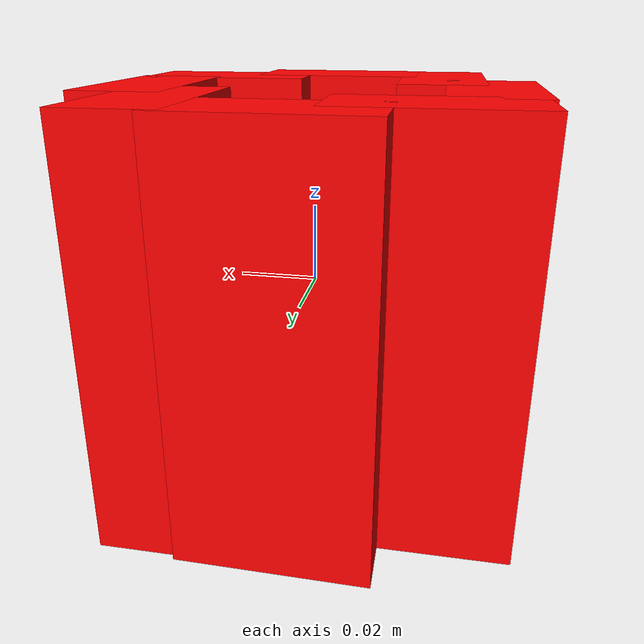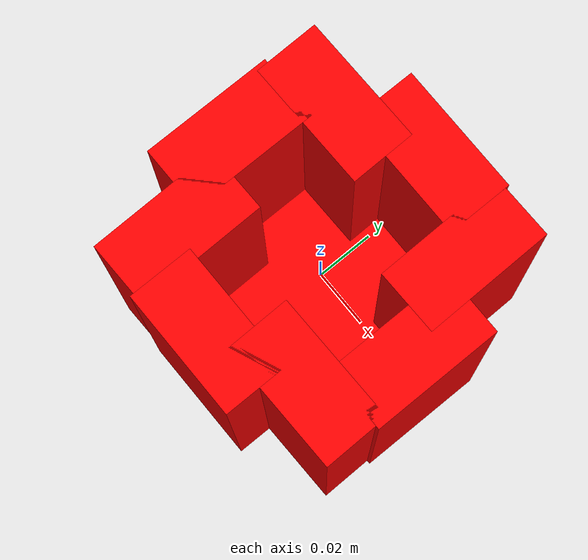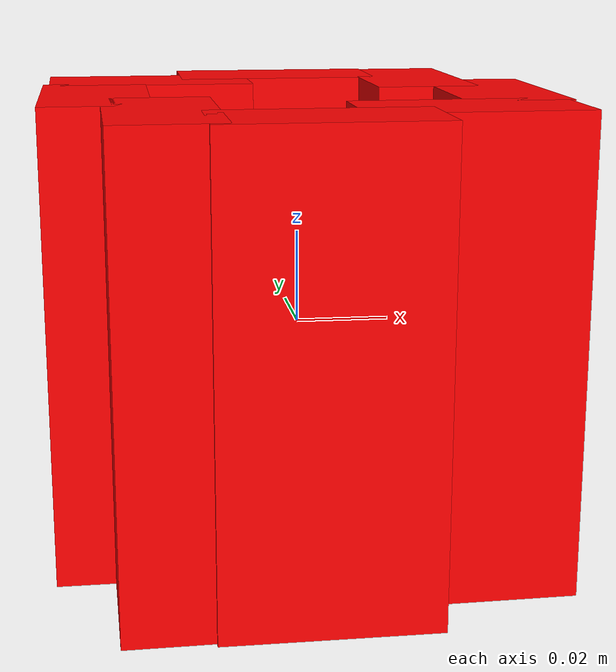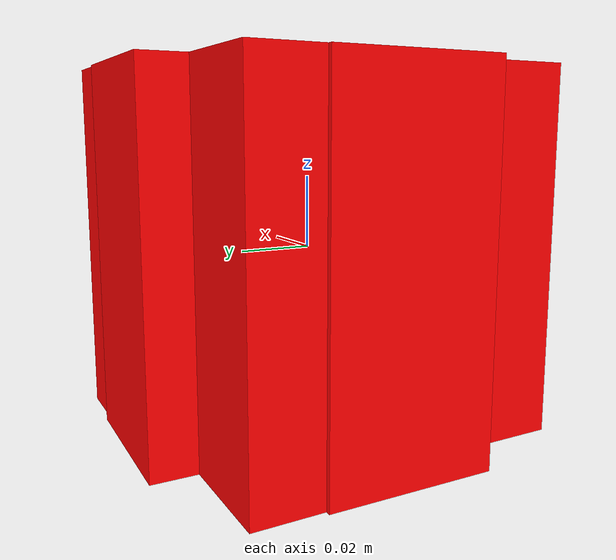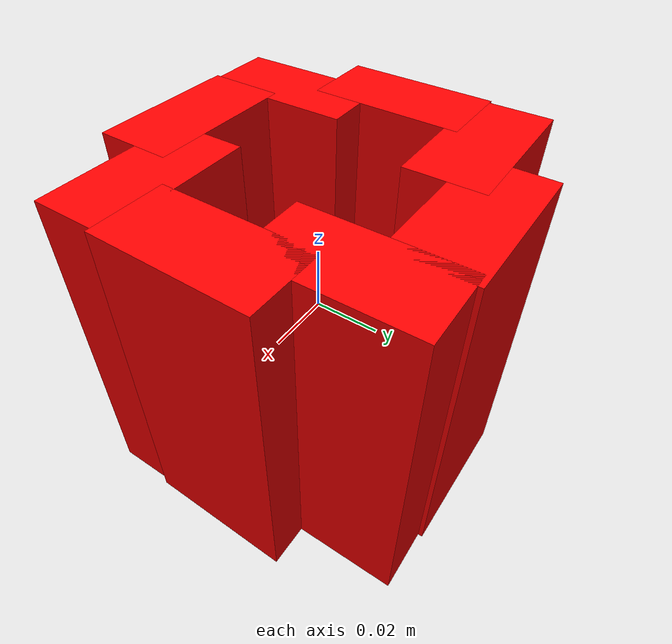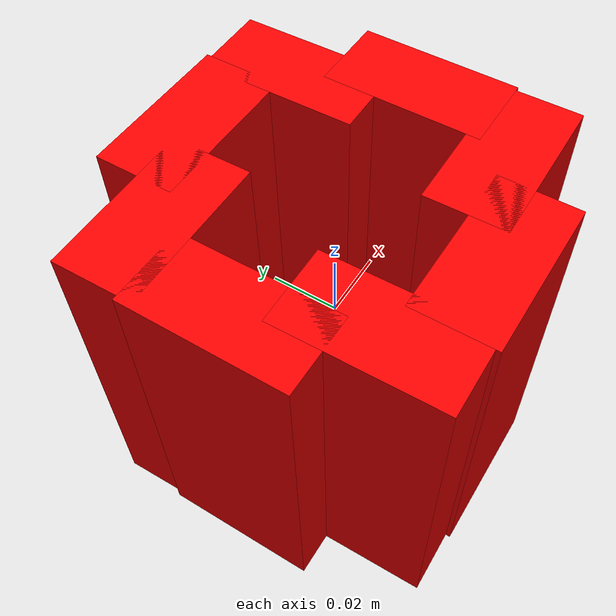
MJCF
<mujoco model="cup">
  <asset>
    <texture file="../textures/metal.png" type="2d" name="tex-metal"/>
    <material name="metal" reflectance="0.7" texrepeat="1 1" texture="tex-metal" texuniform="true"/>
  </asset>
  <worldbody>
    <body>
      <body name="collision">
        <geom pos="-0.04245 0 0.0" size="0.01125 0.0225 0.05" type="box" solimp="0.998 0.998 0.001" solref="0.02 1" density="100" friction="0.95 0.3 0.1" rgba="1 0 0 1" group="1" condim="4"/>
        <geom pos="0.04245 0 0.0" size="0.01125 0.0225 0.05" type="box" solimp="0.998 0.998 0.001" solref="0.02 1" density="100" friction="0.95 0.3 0.1" rgba="1 0 0 1" group="1" condim="4"/>
        <geom pos="0 -0.04245 0.0" size="0.0225 0.01125 0.05" type="box" solimp="0.998 0.998 0.001" solref="0.02 1" density="100" friction="0.95 0.3 0.1" rgba="1 0 0 1" group="1" condim="4"/>
        <geom pos="0 0.04245 0.0" size="0.0225 0.01125 0.05" type="box" solimp="0.998 0.998 0.001" solref="0.02 1" density="100" friction="0.95 0.3 0.1" rgba="1 0 0 1" group="1" condim="4"/>
        <geom pos="-0.03 -0.03 0.0" size="0.01125 0.0225 0.05" axisangle='0 0 1 0.785398' type="box" solimp="0.998 0.998 0.001" solref="0.02 1" density="100" friction="0.95 0.3 0.1" rgba="1 0 0 1" group="1" condim="4"/>
        <geom pos="0.03 0.03 0.0" size="0.01125 0.0225 0.05" axisangle='0 0 1 0.785398' type="box" solimp="0.998 0.998 0.001" solref="0.02 1" density="100" friction="0.95 0.3 0.1" rgba="1 0 0 1" group="1" condim="4"/>
        <geom pos="0.03 -0.03 0.0" size="0.0225 0.01125 0.05" axisangle='0 0 1 0.785398' type="box" solimp="0.998 0.998 0.001" solref="0.02 1" density="100" friction="0.95 0.3 0.1" rgba="1 0 0 1" group="1" condim="4"/>
        <geom pos="-0.03 0.03 0.0" size="0.0225 0.01125 0.05" axisangle='0 0 1 0.785398' type="box" solimp="0.998 0.998 0.001" solref="0.02 1" density="100" friction="0.95 0.3 0.1" rgba="1 0 0 1" group="1" condim="4"/>
        <geom name="bottom" pos="0 0 -0.04" size="0.0342 0.0342 0.01" type="box" solimp="0.998 0.998 0.001" solref="0.02 1" density="100" friction="0.95 0.3 0.1" rgba="1 0 0 1" group="1" condim="4"/>
      </body>
      <site rgba="0 0 0 0" size="0.005" pos="0 0 -0.05" name="bottom_site"/>
      <site rgba="0 0 0 0" size="0.005" pos="0 0 0.05" name="top_site"/>
      <site rgba="0 0 0 0" size="0.005" pos="0.11 0.05 0" name="horizontal_radius_site"/>
    </body>
  </worldbody>
</mujoco>
